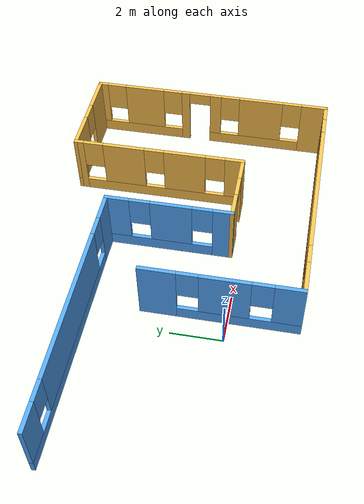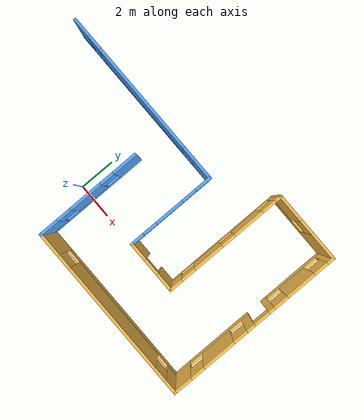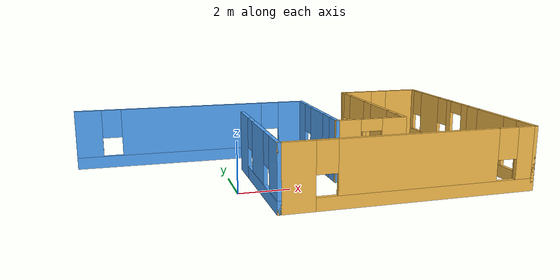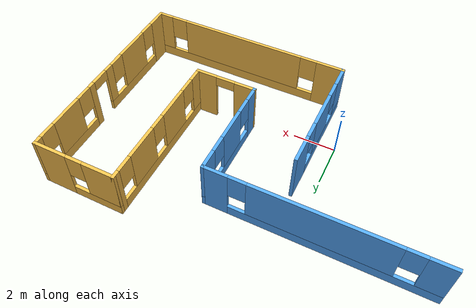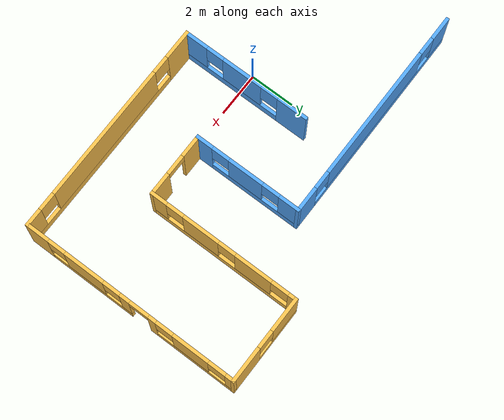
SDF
<sdf version="1.6">
 <model name="building1">
  <pose>-1.05133 2.29231 0 0 -0 0</pose>
  <link name="Wall_10">
   <pose>7.925 1.5 0 0 0 -1.5708</pose>
   <visual name="Wall_10_Visual_0">
    <pose>-3.29894 0 1.25 0 -0 0</pose>
    <geometry><box><size>0.40213 0.15 2.5</size></box></geometry>
    <material>
     <script><uri>file://media/materials/scripts/gazebo.material</uri><name>Gazebo/Grey</name></script>
     <ambient>1 0.764706 0.305882 1</ambient>
    </material>
    <meta><layer>0</layer></meta>
   </visual>
   <collision name="Wall_10_Collision_0">
    <geometry><box><size>0.40213 0.15 2.5</size></box></geometry>
    <pose>-3.29894 0 1.25 0 -0 0</pose>
   </collision>
   <visual name="Wall_10_Visual_1">
    <pose>0.201065 0 0.25 0 -0 0</pose>
    <geometry><box><size>6.59787 0.15 0.5</size></box></geometry>
    <material>
     <script><uri>file://media/materials/scripts/gazebo.material</uri><name>Gazebo/Grey</name></script>
     <ambient>1 0.764706 0.305882 1</ambient>
    </material>
    <meta><layer>0</layer></meta>
   </visual>
   <collision name="Wall_10_Collision_1">
    <geometry><box><size>6.59787 0.15 0.5</size></box></geometry>
    <pose>0.201065 0 0.25 0 -0 0</pose>
   </collision>
   <visual name="Wall_10_Visual_2">
    <pose>-1.44224 0 1.5 0 -0 0</pose>
    <geometry><box><size>1.71126 0.15 2</size></box></geometry>
    <material>
     <script><uri>file://media/materials/scripts/gazebo.material</uri><name>Gazebo/Grey</name></script>
     <ambient>1 0.764706 0.305882 1</ambient>
    </material>
    <meta><layer>0</layer></meta>
   </visual>
   <collision name="Wall_10_Collision_2">
    <geometry><box><size>1.71126 0.15 2</size></box></geometry>
    <pose>-1.44224 0 1.5 0 -0 0</pose>
   </collision>
   <visual name="Wall_10_Visual_3">
    <pose>1.0615 0 1.5 0 -0 0</pose>
    <geometry><box><size>1.69622 0.15 2</size></box></geometry>
    <material>
     <script><uri>file://media/materials/scripts/gazebo.material</uri><name>Gazebo/Grey</name></script>
     <ambient>1 0.764706 0.305882 1</ambient>
    </material>
    <meta><layer>0</layer></meta>
   </visual>
   <collision name="Wall_10_Collision_3">
    <geometry><box><size>1.69622 0.15 2</size></box></geometry>
    <pose>1.0615 0 1.5 0 -0 0</pose>
   </collision>
   <visual name="Wall_10_Visual_4">
    <pose>3.1048 0 1.5 0 -0 0</pose>
    <geometry><box><size>0.790389 0.15 2</size></box></geometry>
    <material>
     <script><uri>file://media/materials/scripts/gazebo.material</uri><name>Gazebo/Grey</name></script>
     <ambient>1 0.764706 0.305882 1</ambient>
    </material>
    <meta><layer>0</layer></meta>
   </visual>
   <collision name="Wall_10_Collision_4">
    <geometry><box><size>0.790389 0.15 2</size></box></geometry>
    <pose>3.1048 0 1.5 0 -0 0</pose>
   </collision>
   <visual name="Wall_10_Visual_5">
    <pose>-2.69787 0 1.9 0 -0 0</pose>
    <geometry><box><size>0.8 0.15 1.2</size></box></geometry>
    <material>
     <script><uri>file://media/materials/scripts/gazebo.material</uri><name>Gazebo/Grey</name></script>
     <ambient>1 0.764706 0.305882 1</ambient>
    </material>
    <meta><layer>0</layer></meta>
   </visual>
   <collision name="Wall_10_Collision_5">
    <geometry><box><size>0.8 0.15 1.2</size></box></geometry>
    <pose>-2.69787 0 1.9 0 -0 0</pose>
   </collision>
   <visual name="Wall_10_Visual_6">
    <pose>-0.186611 0 1.9 0 -0 0</pose>
    <geometry><box><size>0.8 0.15 1.2</size></box></geometry>
    <material>
     <script><uri>file://media/materials/scripts/gazebo.material</uri><name>Gazebo/Grey</name></script>
     <ambient>1 0.764706 0.305882 1</ambient>
    </material>
    <meta><layer>0</layer></meta>
   </visual>
   <collision name="Wall_10_Collision_6">
    <geometry><box><size>0.8 0.15 1.2</size></box></geometry>
    <pose>-0.186611 0 1.9 0 -0 0</pose>
   </collision>
   <visual name="Wall_10_Visual_7">
    <pose>2.30961 0 1.9 0 -0 0</pose>
    <geometry><box><size>0.8 0.15 1.2</size></box></geometry>
    <material>
     <script><uri>file://media/materials/scripts/gazebo.material</uri><name>Gazebo/Grey</name></script>
     <ambient>1 0.764706 0.305882 1</ambient>
    </material>
    <meta><layer>0</layer></meta>
   </visual>
   <collision name="Wall_10_Collision_7">
    <geometry><box><size>0.8 0.15 1.2</size></box></geometry>
    <pose>2.30961 0 1.9 0 -0 0</pose>
   </collision>
  </link>
  <link name="Wall_11">
   <pose>6.5 -1.925 0 0 -0 3.14159</pose>
   <visual name="Wall_11_Visual_0">
    <pose>-0.975368 0 1.25 0 -0 0</pose>
    <geometry><box><size>1.04926 0.15 2.5</size></box></geometry>
    <material>
     <script><uri>file://media/materials/scripts/gazebo.material</uri><name>Gazebo/Grey</name></script>
     <ambient>1 0.764706 0.305882 1</ambient>
    </material>
    <meta><layer>0</layer></meta>
   </visual>
   <collision name="Wall_11_Collision_0">
    <geometry><box><size>1.04926 0.15 2.5</size></box></geometry>
    <pose>-0.975368 0 1.25 0 -0 0</pose>
   </collision>
   <visual name="Wall_11_Visual_1">
    <pose>0.974632 0 1.25 0 -0 0</pose>
    <geometry><box><size>1.05073 0.15 2.5</size></box></geometry>
    <material>
     <script><uri>file://media/materials/scripts/gazebo.material</uri><name>Gazebo/Grey</name></script>
     <ambient>1 0.764706 0.305882 1</ambient>
    </material>
    <meta><layer>0</layer></meta>
   </visual>
   <collision name="Wall_11_Collision_1">
    <geometry><box><size>1.05073 0.15 2.5</size></box></geometry>
    <pose>0.974632 0 1.25 0 -0 0</pose>
   </collision>
   <visual name="Wall_11_Visual_2">
    <pose>-0.000735 0 2.25 0 -0 0</pose>
    <geometry><box><size>0.9 0.15 0.5</size></box></geometry>
    <material>
     <script><uri>file://media/materials/scripts/gazebo.material</uri><name>Gazebo/Grey</name></script>
     <ambient>1 0.764706 0.305882 1</ambient>
    </material>
    <meta><layer>0</layer></meta>
   </visual>
   <collision name="Wall_11_Collision_2">
    <geometry><box><size>0.9 0.15 0.5</size></box></geometry>
    <pose>-0.000735 0 2.25 0 -0 0</pose>
   </collision>
  </link>
  <link name="Wall_12">
   <pose>5.075 0.5 0 0 -0 1.5708</pose>
   <visual name="Wall_12_Visual_0">
    <pose>-2.09729 0 1.25 0 -0 0</pose>
    <geometry><box><size>0.805427 0.15 2.5</size></box></geometry>
    <material>
     <script><uri>file://media/materials/scripts/gazebo.material</uri><name>Gazebo/Grey</name></script>
     <ambient>0.333333 0.666667 1 1</ambient>
    </material>
    <meta><layer>0</layer></meta>
   </visual>
   <collision name="Wall_12_Collision_0">
    <geometry><box><size>0.805427 0.15 2.5</size></box></geometry>
    <pose>-2.09729 0 1.25 0 -0 0</pose>
   </collision>
   <visual name="Wall_12_Visual_1">
    <pose>0.402713 0 0.25 0 -0 0</pose>
    <geometry><box><size>4.19457 0.15 0.5</size></box></geometry>
    <material>
     <script><uri>file://media/materials/scripts/gazebo.material</uri><name>Gazebo/Grey</name></script>
     <ambient>0.333333 0.666667 1 1</ambient>
    </material>
    <meta><layer>0</layer></meta>
   </visual>
   <collision name="Wall_12_Collision_1">
    <geometry><box><size>4.19457 0.15 0.5</size></box></geometry>
    <pose>0.402713 0 0.25 0 -0 0</pose>
   </collision>
   <visual name="Wall_12_Visual_2">
    <pose>-0.084056 0 1.5 0 -0 0</pose>
    <geometry><box><size>1.62103 0.15 2</size></box></geometry>
    <material>
     <script><uri>file://media/materials/scripts/gazebo.material</uri><name>Gazebo/Grey</name></script>
     <ambient>0.333333 0.666667 1 1</ambient>
    </material>
    <meta><layer>0</layer></meta>
   </visual>
   <collision name="Wall_12_Collision_2">
    <geometry><box><size>1.62103 0.15 2</size></box></geometry>
    <pose>-0.084056 0 1.5 0 -0 0</pose>
   </collision>
   <visual name="Wall_12_Visual_3">
    <pose>2.01323 0 1.5 0 -0 0</pose>
    <geometry><box><size>0.973539 0.15 2</size></box></geometry>
    <material>
     <script><uri>file://media/materials/scripts/gazebo.material</uri><name>Gazebo/Grey</name></script>
     <ambient>0.333333 0.666667 1 1</ambient>
    </material>
    <meta><layer>0</layer></meta>
   </visual>
   <collision name="Wall_12_Collision_3">
    <geometry><box><size>0.973539 0.15 2</size></box></geometry>
    <pose>2.01323 0 1.5 0 -0 0</pose>
   </collision>
   <visual name="Wall_12_Visual_4">
    <pose>-1.29457 0 1.9 0 -0 0</pose>
    <geometry><box><size>0.8 0.15 1.2</size></box></geometry>
    <material>
     <script><uri>file://media/materials/scripts/gazebo.material</uri><name>Gazebo/Grey</name></script>
     <ambient>0.333333 0.666667 1 1</ambient>
    </material>
    <meta><layer>0</layer></meta>
   </visual>
   <collision name="Wall_12_Collision_4">
    <geometry><box><size>0.8 0.15 1.2</size></box></geometry>
    <pose>-1.29457 0 1.9 0 -0 0</pose>
   </collision>
   <visual name="Wall_12_Visual_5">
    <pose>1.12646 0 1.9 0 -0 0</pose>
    <geometry><box><size>0.8 0.15 1.2</size></box></geometry>
    <material>
     <script><uri>file://media/materials/scripts/gazebo.material</uri><name>Gazebo/Grey</name></script>
     <ambient>0.333333 0.666667 1 1</ambient>
    </material>
    <meta><layer>0</layer></meta>
   </visual>
   <collision name="Wall_12_Collision_5">
    <geometry><box><size>0.8 0.15 1.2</size></box></geometry>
    <pose>1.12646 0 1.9 0 -0 0</pose>
   </collision>
  </link>
  <link name="Wall_13">
   <pose>0.15 2.925 0 0 -0 3.14159</pose>
   <visual name="Wall_13_Visual_0">
    <pose>-4.40921 0 1.25 0 -0 0</pose>
    <geometry><box><size>1.18157 0.15 2.5</size></box></geometry>
    <material>
     <script><uri>file://media/materials/scripts/gazebo.material</uri><name>Gazebo/Grey</name></script>
     <ambient>0.333333 0.666667 1 1</ambient>
    </material>
    <meta><layer>0</layer></meta>
   </visual>
   <collision name="Wall_13_Collision_0">
    <geometry><box><size>1.18157 0.15 2.5</size></box></geometry>
    <pose>-4.40921 0 1.25 0 -0 0</pose>
   </collision>
   <visual name="Wall_13_Visual_1">
    <pose>0.590787 0 0.25 0 -0 0</pose>
    <geometry><box><size>8.81843 0.15 0.5</size></box></geometry>
    <material>
     <script><uri>file://media/materials/scripts/gazebo.material</uri><name>Gazebo/Grey</name></script>
     <ambient>0.333333 0.666667 1 1</ambient>
    </material>
    <meta><layer>0</layer></meta>
   </visual>
   <collision name="Wall_13_Collision_1">
    <geometry><box><size>8.81843 0.15 0.5</size></box></geometry>
    <pose>0.590787 0 0.25 0 -0 0</pose>
   </collision>
   <visual name="Wall_13_Visual_2">
    <pose>0.047713 0 1.5 0 -0 0</pose>
    <geometry><box><size>6.13228 0.15 2</size></box></geometry>
    <material>
     <script><uri>file://media/materials/scripts/gazebo.material</uri><name>Gazebo/Grey</name></script>
     <ambient>0.333333 0.666667 1 1</ambient>
    </material>
    <meta><layer>0</layer></meta>
   </visual>
   <collision name="Wall_13_Collision_2">
    <geometry><box><size>6.13228 0.15 2</size></box></geometry>
    <pose>0.047713 0 1.5 0 -0 0</pose>
   </collision>
   <visual name="Wall_13_Visual_3">
    <pose>4.45693 0 1.5 0 -0 0</pose>
    <geometry><box><size>1.08615 0.15 2</size></box></geometry>
    <material>
     <script><uri>file://media/materials/scripts/gazebo.material</uri><name>Gazebo/Grey</name></script>
     <ambient>0.333333 0.666667 1 1</ambient>
    </material>
    <meta><layer>0</layer></meta>
   </visual>
   <collision name="Wall_13_Collision_3">
    <geometry><box><size>1.08615 0.15 2</size></box></geometry>
    <pose>4.45693 0 1.5 0 -0 0</pose>
   </collision>
   <visual name="Wall_13_Visual_4">
    <pose>-3.41843 0 1.9 0 -0 0</pose>
    <geometry><box><size>0.8 0.15 1.2</size></box></geometry>
    <material>
     <script><uri>file://media/materials/scripts/gazebo.material</uri><name>Gazebo/Grey</name></script>
     <ambient>0.333333 0.666667 1 1</ambient>
    </material>
    <meta><layer>0</layer></meta>
   </visual>
   <collision name="Wall_13_Collision_4">
    <geometry><box><size>0.8 0.15 1.2</size></box></geometry>
    <pose>-3.41843 0 1.9 0 -0 0</pose>
   </collision>
   <visual name="Wall_13_Visual_5">
    <pose>3.51385 0 1.9 0 -0 0</pose>
    <geometry><box><size>0.8 0.15 1.2</size></box></geometry>
    <material>
     <script><uri>file://media/materials/scripts/gazebo.material</uri><name>Gazebo/Grey</name></script>
     <ambient>0.333333 0.666667 1 1</ambient>
    </material>
    <meta><layer>0</layer></meta>
   </visual>
   <collision name="Wall_13_Collision_5">
    <geometry><box><size>0.8 0.15 1.2</size></box></geometry>
    <pose>3.51385 0 1.9 0 -0 0</pose>
   </collision>
  </link>
  <link name="Wall_6">
   <pose>1.925 -2 0 0 0 -1.5708</pose>
   <visual name="Wall_6_Visual_0">
    <pose>-2.2952 0 1.25 0 -0 0</pose>
    <geometry><box><size>1.40961 0.15 2.5</size></box></geometry>
    <material>
     <script><uri>file://media/materials/scripts/gazebo.material</uri><name>Gazebo/Grey</name></script>
     <ambient>0.333333 0.666667 1 1</ambient>
    </material>
    <meta><layer>0</layer></meta>
   </visual>
   <collision name="Wall_6_Collision_0">
    <geometry><box><size>1.40961 0.15 2.5</size></box></geometry>
    <pose>-2.2952 0 1.25 0 -0 0</pose>
   </collision>
   <visual name="Wall_6_Visual_1">
    <pose>0.704805 0 0.25 0 -0 0</pose>
    <geometry><box><size>4.59039 0.15 0.5</size></box></geometry>
    <material>
     <script><uri>file://media/materials/scripts/gazebo.material</uri><name>Gazebo/Grey</name></script>
     <ambient>0.333333 0.666667 1 1</ambient>
    </material>
    <meta><layer>0</layer></meta>
   </visual>
   <collision name="Wall_6_Collision_1">
    <geometry><box><size>4.59039 0.15 0.5</size></box></geometry>
    <pose>0.704805 0 0.25 0 -0 0</pose>
   </collision>
   <visual name="Wall_6_Visual_2">
    <pose>0.147947 0 1.5 0 -0 0</pose>
    <geometry><box><size>1.87667 0.15 2</size></box></geometry>
    <material>
     <script><uri>file://media/materials/scripts/gazebo.material</uri><name>Gazebo/Grey</name></script>
     <ambient>0.333333 0.666667 1 1</ambient>
    </material>
    <meta><layer>0</layer></meta>
   </visual>
   <collision name="Wall_6_Collision_2">
    <geometry><box><size>1.87667 0.15 2</size></box></geometry>
    <pose>0.147947 0 1.5 0 -0 0</pose>
   </collision>
   <visual name="Wall_6_Visual_3">
    <pose>2.44314 0 1.5 0 -0 0</pose>
    <geometry><box><size>1.11372 0.15 2</size></box></geometry>
    <material>
     <script><uri>file://media/materials/scripts/gazebo.material</uri><name>Gazebo/Grey</name></script>
     <ambient>0.333333 0.666667 1 1</ambient>
    </material>
    <meta><layer>0</layer></meta>
   </visual>
   <collision name="Wall_6_Collision_3">
    <geometry><box><size>1.11372 0.15 2</size></box></geometry>
    <pose>2.44314 0 1.5 0 -0 0</pose>
   </collision>
   <visual name="Wall_6_Visual_4">
    <pose>-1.19039 0 1.9 0 -0 0</pose>
    <geometry><box><size>0.8 0.15 1.2</size></box></geometry>
    <material>
     <script><uri>file://media/materials/scripts/gazebo.material</uri><name>Gazebo/Grey</name></script>
     <ambient>0.333333 0.666667 1 1</ambient>
    </material>
    <meta><layer>0</layer></meta>
   </visual>
   <collision name="Wall_6_Collision_4">
    <geometry><box><size>0.8 0.15 1.2</size></box></geometry>
    <pose>-1.19039 0 1.9 0 -0 0</pose>
   </collision>
   <visual name="Wall_6_Visual_5">
    <pose>1.48628 0 1.9 0 -0 0</pose>
    <geometry><box><size>0.8 0.15 1.2</size></box></geometry>
    <material>
     <script><uri>file://media/materials/scripts/gazebo.material</uri><name>Gazebo/Grey</name></script>
     <ambient>0.333333 0.666667 1 1</ambient>
    </material>
    <meta><layer>0</layer></meta>
   </visual>
   <collision name="Wall_6_Collision_5">
    <geometry><box><size>0.8 0.15 1.2</size></box></geometry>
    <pose>1.48628 0 1.9 0 -0 0</pose>
   </collision>
  </link>
  <link name="Wall_7">
   <pose>6.85 -4.925 0 0 -0 0</pose>
   <visual name="Wall_7_Visual_0">
    <pose>-4.3178 0 1.25 0 -0 0</pose>
    <geometry><box><size>1.36441 0.15 2.5</size></box></geometry>
    <material>
     <script><uri>file://media/materials/scripts/gazebo.material</uri><name>Gazebo/Grey</name></script>
     <ambient>1 0.764706 0.305882 1</ambient>
    </material>
    <meta><layer>0</layer></meta>
   </visual>
   <collision name="Wall_7_Collision_0">
    <geometry><box><size>1.36441 0.15 2.5</size></box></geometry>
    <pose>-4.3178 0 1.25 0 -0 0</pose>
   </collision>
   <visual name="Wall_7_Visual_1">
    <pose>0.682203 0 0.25 0 -0 0</pose>
    <geometry><box><size>8.6356 0.15 0.5</size></box></geometry>
    <material>
     <script><uri>file://media/materials/scripts/gazebo.material</uri><name>Gazebo/Grey</name></script>
     <ambient>1 0.764706 0.305882 1</ambient>
    </material>
    <meta><layer>0</layer></meta>
   </visual>
   <collision name="Wall_7_Collision_1">
    <geometry><box><size>8.6356 0.15 0.5</size></box></geometry>
    <pose>0.682203 0 0.25 0 -0 0</pose>
   </collision>
   <visual name="Wall_7_Visual_2">
    <pose>0.274905 0 1.5 0 -0 0</pose>
    <geometry><box><size>6.221 0.15 2</size></box></geometry>
    <material>
     <script><uri>file://media/materials/scripts/gazebo.material</uri><name>Gazebo/Grey</name></script>
     <ambient>1 0.764706 0.305882 1</ambient>
    </material>
    <meta><layer>0</layer></meta>
   </visual>
   <collision name="Wall_7_Collision_2">
    <geometry><box><size>6.221 0.15 2</size></box></geometry>
    <pose>0.274905 0 1.5 0 -0 0</pose>
   </collision>
   <visual name="Wall_7_Visual_3">
    <pose>4.5927 0 1.5 0 -0 0</pose>
    <geometry><box><size>0.814594 0.15 2</size></box></geometry>
    <material>
     <script><uri>file://media/materials/scripts/gazebo.material</uri><name>Gazebo/Grey</name></script>
     <ambient>1 0.764706 0.305882 1</ambient>
    </material>
    <meta><layer>0</layer></meta>
   </visual>
   <collision name="Wall_7_Collision_3">
    <geometry><box><size>0.814594 0.15 2</size></box></geometry>
    <pose>4.5927 0 1.5 0 -0 0</pose>
   </collision>
   <visual name="Wall_7_Visual_4">
    <pose>-3.23559 0 1.9 0 -0 0</pose>
    <geometry><box><size>0.8 0.15 1.2</size></box></geometry>
    <material>
     <script><uri>file://media/materials/scripts/gazebo.material</uri><name>Gazebo/Grey</name></script>
     <ambient>1 0.764706 0.305882 1</ambient>
    </material>
    <meta><layer>0</layer></meta>
   </visual>
   <collision name="Wall_7_Collision_4">
    <geometry><box><size>0.8 0.15 1.2</size></box></geometry>
    <pose>-3.23559 0 1.9 0 -0 0</pose>
   </collision>
   <visual name="Wall_7_Visual_5">
    <pose>3.78541 0 1.9 0 -0 0</pose>
    <geometry><box><size>0.8 0.15 1.2</size></box></geometry>
    <material>
     <script><uri>file://media/materials/scripts/gazebo.material</uri><name>Gazebo/Grey</name></script>
     <ambient>1 0.764706 0.305882 1</ambient>
    </material>
    <meta><layer>0</layer></meta>
   </visual>
   <collision name="Wall_7_Collision_5">
    <geometry><box><size>0.8 0.15 1.2</size></box></geometry>
    <pose>3.78541 0 1.9 0 -0 0</pose>
   </collision>
  </link>
  <link name="Wall_8">
   <pose>11.775 0 0 0 -0 1.5708</pose>
   <visual name="Wall_8_Visual_0">
    <pose>-4.45066 0 1.25 0 -0 0</pose>
    <geometry><box><size>1.09868 0.15 2.5</size></box></geometry>
    <material>
     <script><uri>file://media/materials/scripts/gazebo.material</uri><name>Gazebo/Grey</name></script>
     <ambient>1 0.764706 0.305882 1</ambient>
    </material>
    <meta><layer>0</layer></meta>
   </visual>
   <collision name="Wall_8_Collision_0">
    <geometry><box><size>1.09868 0.15 2.5</size></box></geometry>
    <pose>-4.45066 0 1.25 0 -0 0</pose>
   </collision>
   <visual name="Wall_8_Visual_1">
    <pose>1.11011 0 1.25 0 -0 0</pose>
    <geometry><box><size>0.352998 0.15 2.5</size></box></geometry>
    <material>
     <script><uri>file://media/materials/scripts/gazebo.material</uri><name>Gazebo/Grey</name></script>
     <ambient>1 0.764706 0.305882 1</ambient>
    </material>
    <meta><layer>0</layer></meta>
   </visual>
   <collision name="Wall_8_Collision_1">
    <geometry><box><size>0.352998 0.15 2.5</size></box></geometry>
    <pose>1.11011 0 1.25 0 -0 0</pose>
   </collision>
   <visual name="Wall_8_Visual_2">
    <pose>-1.93385 0 0.25 0 -0 0</pose>
    <geometry><box><size>3.93493 0.15 0.5</size></box></geometry>
    <material>
     <script><uri>file://media/materials/scripts/gazebo.material</uri><name>Gazebo/Grey</name></script>
     <ambient>1 0.764706 0.305882 1</ambient>
    </material>
    <meta><layer>0</layer></meta>
   </visual>
   <collision name="Wall_8_Collision_2">
    <geometry><box><size>3.93493 0.15 0.5</size></box></geometry>
    <pose>-1.93385 0 0.25 0 -0 0</pose>
   </collision>
   <visual name="Wall_8_Visual_3">
    <pose>3.14331 0 0.25 0 -0 0</pose>
    <geometry><box><size>3.71339 0.15 0.5</size></box></geometry>
    <material>
     <script><uri>file://media/materials/scripts/gazebo.material</uri><name>Gazebo/Grey</name></script>
     <ambient>1 0.764706 0.305882 1</ambient>
    </material>
    <meta><layer>0</layer></meta>
   </visual>
   <collision name="Wall_8_Collision_3">
    <geometry><box><size>3.71339 0.15 0.5</size></box></geometry>
    <pose>3.14331 0 0.25 0 -0 0</pose>
   </collision>
   <visual name="Wall_8_Visual_4">
    <pose>-2.1705 0 1.5 0 -0 0</pose>
    <geometry><box><size>1.86163 0.15 2</size></box></geometry>
    <material>
     <script><uri>file://media/materials/scripts/gazebo.material</uri><name>Gazebo/Grey</name></script>
     <ambient>1 0.764706 0.305882 1</ambient>
    </material>
    <meta><layer>0</layer></meta>
   </visual>
   <collision name="Wall_8_Collision_4">
    <geometry><box><size>1.86163 0.15 2</size></box></geometry>
    <pose>-2.1705 0 1.5 0 -0 0</pose>
   </collision>
   <visual name="Wall_8_Visual_5">
    <pose>-0.203036 0 1.5 0 -0 0</pose>
    <geometry><box><size>0.473298 0.15 2</size></box></geometry>
    <material>
     <script><uri>file://media/materials/scripts/gazebo.material</uri><name>Gazebo/Grey</name></script>
     <ambient>1 0.764706 0.305882 1</ambient>
    </material>
    <meta><layer>0</layer></meta>
   </visual>
   <collision name="Wall_8_Collision_5">
    <geometry><box><size>0.473298 0.15 2</size></box></geometry>
    <pose>-0.203036 0 1.5 0 -0 0</pose>
   </collision>
   <visual name="Wall_8_Visual_6">
    <pose>-0.203036 0 1.5 0 -0 0</pose>
    <geometry><box><size>0.473298 0.15 2</size></box></geometry>
    <material>
     <script><uri>file://media/materials/scripts/gazebo.material</uri><name>Gazebo/Grey</name></script>
     <ambient>1 0.764706 0.305882 1</ambient>
    </material>
    <meta><layer>0</layer></meta>
   </visual>
   <collision name="Wall_8_Collision_6">
    <geometry><box><size>0.473298 0.15 2</size></box></geometry>
    <pose>-0.203036 0 1.5 0 -0 0</pose>
   </collision>
   <visual name="Wall_8_Visual_7">
    <pose>2.9272 0 1.5 0 -0 0</pose>
    <geometry><box><size>1.68118 0.15 2</size></box></geometry>
    <material>
     <script><uri>file://media/materials/scripts/gazebo.material</uri><name>Gazebo/Grey</name></script>
     <ambient>1 0.764706 0.305882 1</ambient>
    </material>
    <meta><layer>0</layer></meta>
   </visual>
   <collision name="Wall_8_Collision_7">
    <geometry><box><size>1.68118 0.15 2</size></box></geometry>
    <pose>2.9272 0 1.5 0 -0 0</pose>
   </collision>
   <visual name="Wall_8_Visual_8">
    <pose>4.7839 0 1.5 0 -0 0</pose>
    <geometry><box><size>0.432204 0.15 2</size></box></geometry>
    <material>
     <script><uri>file://media/materials/scripts/gazebo.material</uri><name>Gazebo/Grey</name></script>
     <ambient>1 0.764706 0.305882 1</ambient>
    </material>
    <meta><layer>0</layer></meta>
   </visual>
   <collision name="Wall_8_Collision_8">
    <geometry><box><size>0.432204 0.15 2</size></box></geometry>
    <pose>4.7839 0 1.5 0 -0 0</pose>
   </collision>
   <visual name="Wall_8_Visual_9">
    <pose>-3.50132 0 1.9 0 -0 0</pose>
    <geometry><box><size>0.8 0.15 1.2</size></box></geometry>
    <material>
     <script><uri>file://media/materials/scripts/gazebo.material</uri><name>Gazebo/Grey</name></script>
     <ambient>1 0.764706 0.305882 1</ambient>
    </material>
    <meta><layer>0</layer></meta>
   </visual>
   <collision name="Wall_8_Collision_9">
    <geometry><box><size>0.8 0.15 1.2</size></box></geometry>
    <pose>-3.50132 0 1.9 0 -0 0</pose>
   </collision>
   <visual name="Wall_8_Visual_10">
    <pose>1.68661 0 1.9 0 -0 0</pose>
    <geometry><box><size>0.8 0.15 1.2</size></box></geometry>
    <material>
     <script><uri>file://media/materials/scripts/gazebo.material</uri><name>Gazebo/Grey</name></script>
     <ambient>1 0.764706 0.305882 1</ambient>
    </material>
    <meta><layer>0</layer></meta>
   </visual>
   <collision name="Wall_8_Collision_10">
    <geometry><box><size>0.8 0.15 1.2</size></box></geometry>
    <pose>1.68661 0 1.9 0 -0 0</pose>
   </collision>
   <visual name="Wall_8_Visual_11">
    <pose>-0.839686 0 1.9 0 -0 0</pose>
    <geometry><box><size>0.8 0.15 1.2</size></box></geometry>
    <material>
     <script><uri>file://media/materials/scripts/gazebo.material</uri><name>Gazebo/Grey</name></script>
     <ambient>1 0.764706 0.305882 1</ambient>
    </material>
    <meta><layer>0</layer></meta>
   </visual>
   <collision name="Wall_8_Collision_11">
    <geometry><box><size>0.8 0.15 1.2</size></box></geometry>
    <pose>-0.839686 0 1.9 0 -0 0</pose>
   </collision>
   <visual name="Wall_8_Visual_12">
    <pose>4.1678 0 1.9 0 -0 0</pose>
    <geometry><box><size>0.8 0.15 1.2</size></box></geometry>
    <material>
     <script><uri>file://media/materials/scripts/gazebo.material</uri><name>Gazebo/Grey</name></script>
     <ambient>1 0.764706 0.305882 1</ambient>
    </material>
    <meta><layer>0</layer></meta>
   </visual>
   <collision name="Wall_8_Collision_12">
    <geometry><box><size>0.8 0.15 1.2</size></box></geometry>
    <pose>4.1678 0 1.9 0 -0 0</pose>
   </collision>
   <visual name="Wall_8_Visual_13">
    <pose>0.483613 0 2.25 0 -0 0</pose>
    <geometry><box><size>0.9 0.15 0.5</size></box></geometry>
    <material>
     <script><uri>file://media/materials/scripts/gazebo.material</uri><name>Gazebo/Grey</name></script>
     <ambient>1 0.764706 0.305882 1</ambient>
    </material>
    <meta><layer>0</layer></meta>
   </visual>
   <collision name="Wall_8_Collision_13">
    <geometry><box><size>0.9 0.15 0.5</size></box></geometry>
    <pose>0.483613 0 2.25 0 -0 0</pose>
   </collision>
   <visual name="Wall_8_Visual_14">
    <pose>0.483613 0 2.25 0 -0 0</pose>
    <geometry><box><size>0.9 0.15 0.5</size></box></geometry>
    <material>
     <script><uri>file://media/materials/scripts/gazebo.material</uri><name>Gazebo/Grey</name></script>
     <ambient>1 0.764706 0.305882 1</ambient>
    </material>
    <meta><layer>0</layer></meta>
   </visual>
   <collision name="Wall_8_Collision_14">
    <geometry><box><size>0.9 0.15 0.5</size></box></geometry>
    <pose>0.483613 0 2.25 0 -0 0</pose>
   </collision>
  </link>
  <link name="Wall_9">
   <pose>9.85 4.925 0 0 -0 3.14159</pose>
   <visual name="Wall_9_Visual_0">
    <pose>-1.18632 0 1.25 0 -0 0</pose>
    <geometry><box><size>1.62737 0.15 2.5</size></box></geometry>
    <material>
     <script><uri>file://media/materials/scripts/gazebo.material</uri><name>Gazebo/Grey</name></script>
     <ambient>1 0.764706 0.305882 1</ambient>
    </material>
    <meta><layer>0</layer></meta>
   </visual>
   <collision name="Wall_9_Collision_0">
    <geometry><box><size>1.62737 0.15 2.5</size></box></geometry>
    <pose>-1.18632 0 1.25 0 -0 0</pose>
   </collision>
   <visual name="Wall_9_Visual_1">
    <pose>0.813685 0 0.25 0 -0 0</pose>
    <geometry><box><size>2.37263 0.15 0.5</size></box></geometry>
    <material>
     <script><uri>file://media/materials/scripts/gazebo.material</uri><name>Gazebo/Grey</name></script>
     <ambient>1 0.764706 0.305882 1</ambient>
    </material>
    <meta><layer>0</layer></meta>
   </visual>
   <collision name="Wall_9_Collision_1">
    <geometry><box><size>2.37263 0.15 0.5</size></box></geometry>
    <pose>0.813685 0 0.25 0 -0 0</pose>
   </collision>
   <visual name="Wall_9_Visual_2">
    <pose>1.21368 0 1.5 0 -0 0</pose>
    <geometry><box><size>1.57263 0.15 2</size></box></geometry>
    <material>
     <script><uri>file://media/materials/scripts/gazebo.material</uri><name>Gazebo/Grey</name></script>
     <ambient>1 0.764706 0.305882 1</ambient>
    </material>
    <meta><layer>0</layer></meta>
   </visual>
   <collision name="Wall_9_Collision_2">
    <geometry><box><size>1.57263 0.15 2</size></box></geometry>
    <pose>1.21368 0 1.5 0 -0 0</pose>
   </collision>
   <visual name="Wall_9_Visual_3">
    <pose>0.027369 0 1.9 0 -0 0</pose>
    <geometry><box><size>0.8 0.15 1.2</size></box></geometry>
    <material>
     <script><uri>file://media/materials/scripts/gazebo.material</uri><name>Gazebo/Grey</name></script>
     <ambient>1 0.764706 0.305882 1</ambient>
    </material>
    <meta><layer>0</layer></meta>
   </visual>
   <collision name="Wall_9_Collision_3">
    <geometry><box><size>0.8 0.15 1.2</size></box></geometry>
    <pose>0.027369 0 1.9 0 -0 0</pose>
   </collision>
  </link>
  <static>1</static>
 </model>
</sdf>
